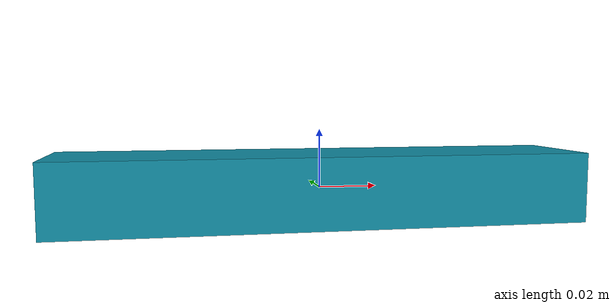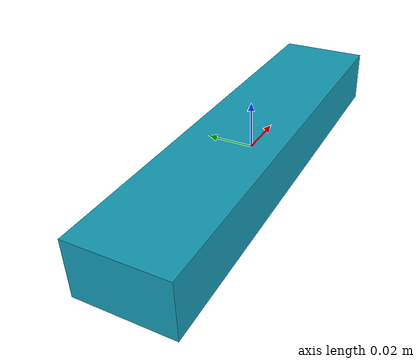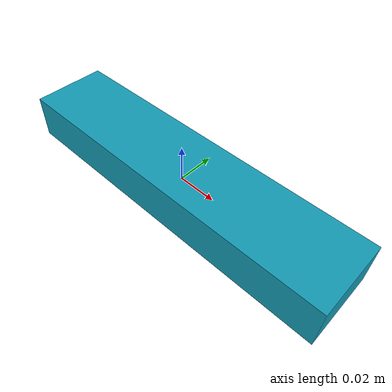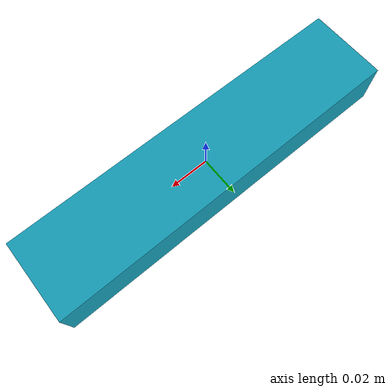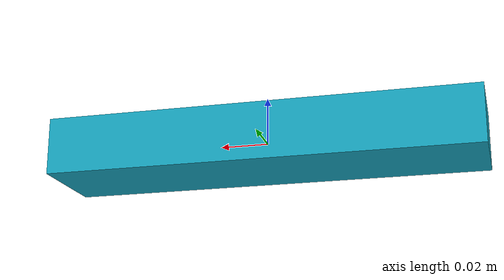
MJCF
<mujoco model="short_lifting_rod">
  <asset>
    <material name="rod_cyan" rgba="0.08 0.62 0.72 1" specular="0.20" shininess="0.35"/>
  </asset>
  <worldbody>
    <body>
      <body name="object" pos="0 0 0">
        <!-- A normal free rigid body. The invisible group-0 geom carries all mass and contact. -->
        <geom name="rod_collision" type="box" size="0.090 0.0200 0.0120"
              mass="0.045" friction="1.40 0.010 0.001" solref="0.008 1"
              group="0" rgba="0 0 0 0"/>
        <geom name="rod_visual" type="box" size="0.090 0.0200 0.0120"
              contype="0" conaffinity="0" mass="0" group="1" material="rod_cyan"/>
      </body>
      <site name="bottom_site" pos="0 0 -0.0120" size="0.002" rgba="0 0 0 0"/>
      <site name="top_site" pos="0 0 0.0120" size="0.002" rgba="0 0 0 0"/>
      <site name="horizontal_radius_site" pos="0.091 0 0" size="0.002" rgba="0 0 0 0"/>
    </body>
  </worldbody>
</mujoco>
